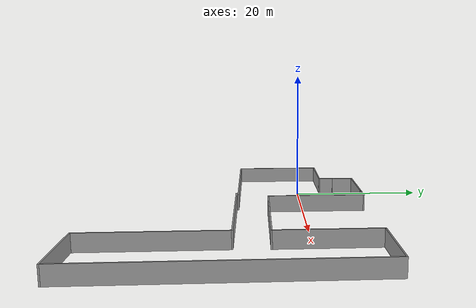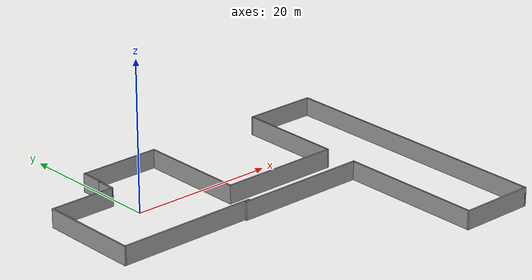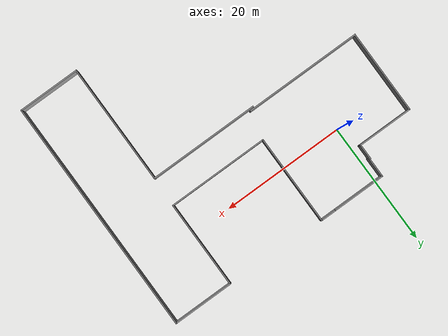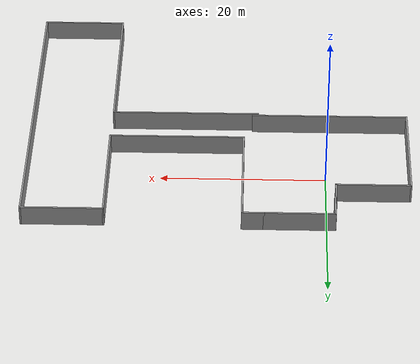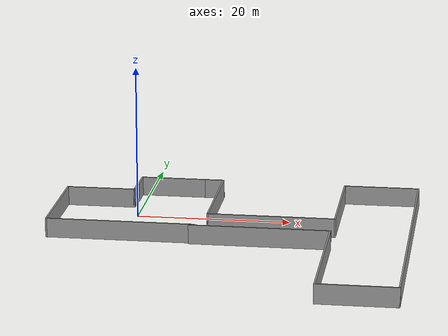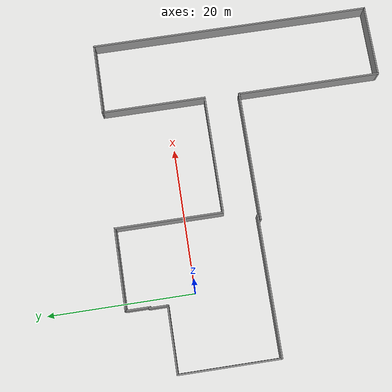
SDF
<?xml version='1.0'?>
<sdf version='1.4'>
  <model name='wall1'>
    <link name='Wall_11'>
      <collision name='Wall_11_Collision'>
        <geometry>
          <box>
            <size>3.43645 0.2 2.5</size>
          </box>
        </geometry>
        <pose>0 0 1.25 0 -0 0</pose>
      </collision>
      <visual name='Wall_11_Visual'>
        <pose>0 0 1.25 0 -0 0</pose>
        <geometry>
          <box>
            <size>3.43645 0.2 2.5</size>
          </box>
        </geometry>
        <material>
          <script>
            <uri>file://media/materials/scripts/gazebo.material</uri>
            <name>Gazebo/Grey</name>
          </script>
        </material>
      </visual>
      <velocity_decay>
        <linear>0</linear>
        <angular>0</angular>
      </velocity_decay>
      <pose>-1.00348 7.77043 0 0 -0 1.5708</pose>
    </link>
    <link name='Wall_12'>
      <collision name='Wall_12_Collision'>
        <geometry>
          <box>
            <size>8.61476 0.2 2.5</size>
          </box>
        </geometry>
        <pose>0 0 1.25 0 -0 0</pose>
      </collision>
      <visual name='Wall_12_Visual'>
        <pose>0 0 1.25 0 -0 0</pose>
        <geometry>
          <box>
            <size>8.61476 0.2 2.5</size>
          </box>
        </geometry>
        <material>
          <script>
            <uri>file://media/materials/scripts/gazebo.material</uri>
            <name>Gazebo/Grey</name>
          </script>
        </material>
      </visual>
      <velocity_decay>
        <linear>0</linear>
        <angular>0</angular>
      </velocity_decay>
      <pose>3.2039 9.38865 0 0 -0 0</pose>
    </link>
    <link name='Wall_13'>
      <collision name='Wall_13_Collision'>
        <geometry>
          <box>
            <size>2.78916 0.2 2.5</size>
          </box>
        </geometry>
        <pose>0 0 1.25 0 -0 0</pose>
      </collision>
      <visual name='Wall_13_Visual'>
        <pose>0 0 1.25 0 -0 0</pose>
        <geometry>
          <box>
            <size>2.78916 0.2 2.5</size>
          </box>
        </geometry>
        <material>
          <script>
            <uri>file://media/materials/scripts/gazebo.material</uri>
            <name>Gazebo/Grey</name>
          </script>
        </material>
      </visual>
      <velocity_decay>
        <linear>0</linear>
        <angular>0</angular>
      </velocity_decay>
      <pose>8.70586 9.38865 0 0 -0 0</pose>
    </link>
    <link name='Wall_14'>
      <collision name='Wall_14_Collision'>
        <geometry>
          <box>
            <size>14.8449 0.2 2.5</size>
          </box>
        </geometry>
        <pose>0 0 1.25 0 -0 0</pose>
      </collision>
      <visual name='Wall_14_Visual'>
        <pose>0 0 1.25 0 -0 0</pose>
        <geometry>
          <box>
            <size>14.8449 0.2 2.5</size>
          </box>
        </geometry>
        <material>
          <script>
            <uri>file://media/materials/scripts/gazebo.material</uri>
            <name>Gazebo/Grey</name>
          </script>
        </material>
      </visual>
      <velocity_decay>
        <linear>0</linear>
        <angular>0</angular>
      </velocity_decay>
      <pose>10.0004 2.06619 0 0 0 -1.5708</pose>
    </link>
    <link name='Wall_15'>
      <collision name='Wall_15_Collision'>
        <geometry>
          <box>
            <size>16.5441 0.2 2.5</size>
          </box>
        </geometry>
        <pose>0 0 1.25 0 -0 0</pose>
      </collision>
      <visual name='Wall_15_Visual'>
        <pose>0 0 1.25 0 -0 0</pose>
        <geometry>
          <box>
            <size>16.5441 0.2 2.5</size>
          </box>
        </geometry>
        <material>
          <script>
            <uri>file://media/materials/scripts/gazebo.material</uri>
            <name>Gazebo/Grey</name>
          </script>
        </material>
      </visual>
      <velocity_decay>
        <linear>0</linear>
        <angular>0</angular>
      </velocity_decay>
      <pose>18.1725 -5.25627 0 0 -0 0</pose>
    </link>
    <link name='Wall_16'>
      <collision name='Wall_16_Collision'>
        <geometry>
          <box>
            <size>14.4404 0.2 2.5</size>
          </box>
        </geometry>
        <pose>0 0 1.25 0 -0 0</pose>
      </collision>
      <visual name='Wall_16_Visual'>
        <pose>0 0 1.25 0 -0 0</pose>
        <geometry>
          <box>
            <size>14.4404 0.2 2.5</size>
          </box>
        </geometry>
        <material>
          <script>
            <uri>file://media/materials/scripts/gazebo.material</uri>
            <name>Gazebo/Grey</name>
          </script>
        </material>
      </visual>
      <velocity_decay>
        <linear>0</linear>
        <angular>0</angular>
      </velocity_decay>
      <pose>26.3445 1.86391 0 0 -0 1.5708</pose>
    </link>
    <link name='Wall_17'>
      <collision name='Wall_17_Collision'>
        <geometry>
          <box>
            <size>9.99025 0.2 2.5</size>
          </box>
        </geometry>
        <pose>0 0 1.25 0 -0 0</pose>
      </collision>
      <visual name='Wall_17_Visual'>
        <pose>0 0 1.25 0 -0 0</pose>
        <geometry>
          <box>
            <size>9.99025 0.2 2.5</size>
          </box>
        </geometry>
        <material>
          <script>
            <uri>file://media/materials/scripts/gazebo.material</uri>
            <name>Gazebo/Grey</name>
          </script>
        </material>
      </visual>
      <velocity_decay>
        <linear>0</linear>
        <angular>0</angular>
      </velocity_decay>
      <pose>31.2396 8.98409 0 0 -0 0</pose>
    </link>
    <link name='Wall_18'>
      <collision name='Wall_18_Collision'>
        <geometry>
          <box>
            <size>38.8964 0.2 2.5</size>
          </box>
        </geometry>
        <pose>0 0 1.25 0 -0 0</pose>
      </collision>
      <visual name='Wall_18_Visual'>
        <pose>0 0 1.25 0 -0 0</pose>
        <geometry>
          <box>
            <size>38.8964 0.2 2.5</size>
          </box>
        </geometry>
        <material>
          <script>
            <uri>file://media/materials/scripts/gazebo.material</uri>
            <name>Gazebo/Grey</name>
          </script>
        </material>
      </visual>
      <velocity_decay>
        <linear>0</linear>
        <angular>0</angular>
      </velocity_decay>
      <pose>36.1347 -10.3641 0 0 0 -1.5708</pose>
    </link>
    <link name='Wall_19'>
      <collision name='Wall_19_Collision'>
        <geometry>
          <box>
            <size>10.1464 0.2 2.5</size>
          </box>
        </geometry>
        <pose>0 0 1.25 0 -0 0</pose>
      </collision>
      <visual name='Wall_19_Visual'>
        <pose>0 0 1.25 0 -0 0</pose>
        <geometry>
          <box>
            <size>10.1464 0.2 2.5</size>
          </box>
        </geometry>
        <material>
          <script>
            <uri>file://media/materials/scripts/gazebo.material</uri>
            <name>Gazebo/Grey</name>
          </script>
        </material>
      </visual>
      <velocity_decay>
        <linear>0</linear>
        <angular>0</angular>
      </velocity_decay>
      <pose>31.1615 -29.7123 0 0 -0 3.14159</pose>
    </link>
    <link name='Wall_20'>
      <collision name='Wall_20_Collision'>
        <geometry>
          <box>
            <size>19.8218 0.2 2.5</size>
          </box>
        </geometry>
        <pose>0 0 1.25 0 -0 0</pose>
      </collision>
      <visual name='Wall_20_Visual'>
        <pose>0 0 1.25 0 -0 0</pose>
        <geometry>
          <box>
            <size>19.8218 0.2 2.5</size>
          </box>
        </geometry>
        <material>
          <script>
            <uri>file://media/materials/scripts/gazebo.material</uri>
            <name>Gazebo/Grey</name>
          </script>
        </material>
      </visual>
      <velocity_decay>
        <linear>0</linear>
        <angular>0</angular>
      </velocity_decay>
      <pose>26.1883 -19.9013 0 0 -0 1.5708</pose>
    </link>
    <link name='Wall_21'>
      <collision name='Wall_21_Collision'>
        <geometry>
          <box>
            <size>18.0613 0.2 2.5</size>
          </box>
        </geometry>
        <pose>0 0 1.25 0 -0 0</pose>
      </collision>
      <visual name='Wall_21_Visual'>
        <pose>0 0 1.25 0 -0 0</pose>
        <geometry>
          <box>
            <size>18.0613 0.2 2.5</size>
          </box>
        </geometry>
        <material>
          <script>
            <uri>file://media/materials/scripts/gazebo.material</uri>
            <name>Gazebo/Grey</name>
          </script>
        </material>
      </visual>
      <velocity_decay>
        <linear>0</linear>
        <angular>0</angular>
      </velocity_decay>
      <pose>17.2577 -10.0904 0 0 -0 3.14159</pose>
    </link>
    <link name='Wall_6'>
      <collision name='Wall_6_Collision'>
        <geometry>
          <box>
            <size>19.1925 0.2 2.5</size>
          </box>
        </geometry>
        <pose>0 0 1.25 0 -0 0</pose>
      </collision>
      <visual name='Wall_6_Visual'>
        <pose>0 0 1.25 0 -0 0</pose>
        <geometry>
          <box>
            <size>19.1925 0.2 2.5</size>
          </box>
        </geometry>
        <material>
          <script>
            <uri>file://media/materials/scripts/gazebo.material</uri>
            <name>Gazebo/Grey</name>
          </script>
        </material>
      </visual>
      <velocity_decay>
        <linear>0</linear>
        <angular>0</angular>
      </velocity_decay>
      <pose>-0.578406 -9.79468 0 0 -0 3.14159</pose>
    </link>
    <link name='Wall_7'>
      <collision name='Wall_7_Collision'>
        <geometry>
          <box>
            <size>13.8193 0.2 2.5</size>
          </box>
        </geometry>
        <pose>0 0 1.25 0 -0 0</pose>
      </collision>
      <visual name='Wall_7_Visual'>
        <pose>0 0 1.25 0 -0 0</pose>
        <geometry>
          <box>
            <size>13.8193 0.2 2.5</size>
          </box>
        </geometry>
        <material>
          <script>
            <uri>file://media/materials/scripts/gazebo.material</uri>
            <name>Gazebo/Grey</name>
          </script>
        </material>
      </visual>
      <velocity_decay>
        <linear>0</linear>
        <angular>0</angular>
      </velocity_decay>
      <pose>-10.0747 -2.98503 0 0 -0 1.5708</pose>
    </link>
    <link name='Wall_8'>
      <collision name='Wall_8_Collision'>
        <geometry>
          <box>
            <size>9.13767 0.2 2.5</size>
          </box>
        </geometry>
        <pose>0 0 1.25 0 -0 0</pose>
      </collision>
      <visual name='Wall_8_Visual'>
        <pose>0 0 1.25 0 -0 0</pose>
        <geometry>
          <box>
            <size>9.13767 0.2 2.5</size>
          </box>
        </geometry>
        <material>
          <script>
            <uri>file://media/materials/scripts/gazebo.material</uri>
            <name>Gazebo/Grey</name>
          </script>
        </material>
      </visual>
      <velocity_decay>
        <linear>0</linear>
        <angular>0</angular>
      </velocity_decay>
      <pose>-5.60584 3.82462 0 0 -0 0</pose>
    </link>
    <link name='Wall_9'>
      <collision name='Wall_9_Collision'>
        <geometry>
          <box>
            <size>2.64722 0.2 2.5</size>
          </box>
        </geometry>
        <pose>0 0 1.25 0 -0 0</pose>
      </collision>
      <visual name='Wall_9_Visual'>
        <pose>0 0 1.25 0 -0 0</pose>
        <geometry>
          <box>
            <size>2.64722 0.2 2.5</size>
          </box>
        </geometry>
        <material>
          <script>
            <uri>file://media/materials/scripts/gazebo.material</uri>
            <name>Gazebo/Grey</name>
          </script>
        </material>
      </visual>
      <velocity_decay>
        <linear>0</linear>
        <angular>0</angular>
      </velocity_decay>
      <pose>-1.13701 5.04823 0 0 -0 1.5708</pose>
    </link>
    <static>1</static>
  </model>
</sdf>
